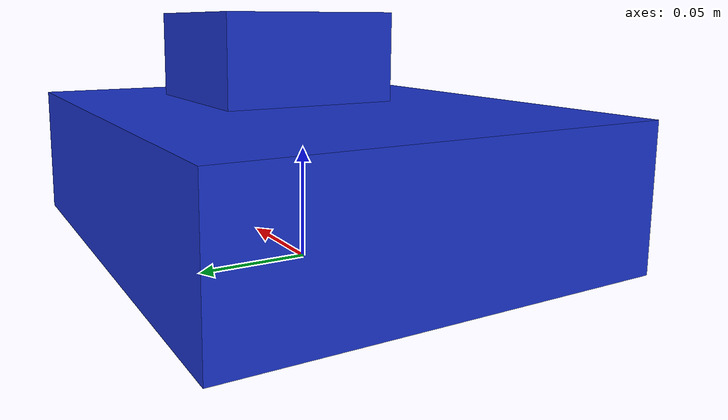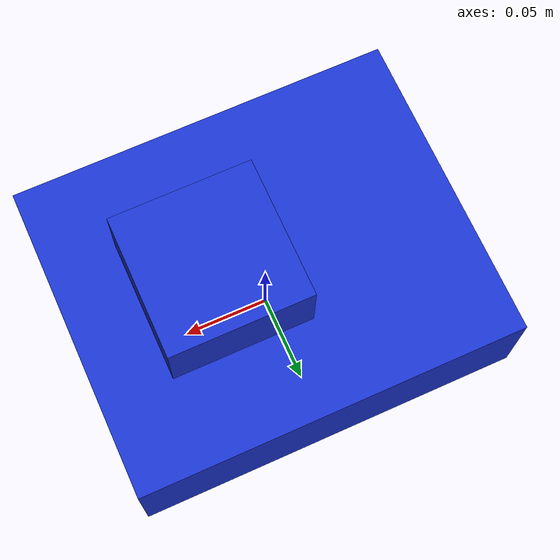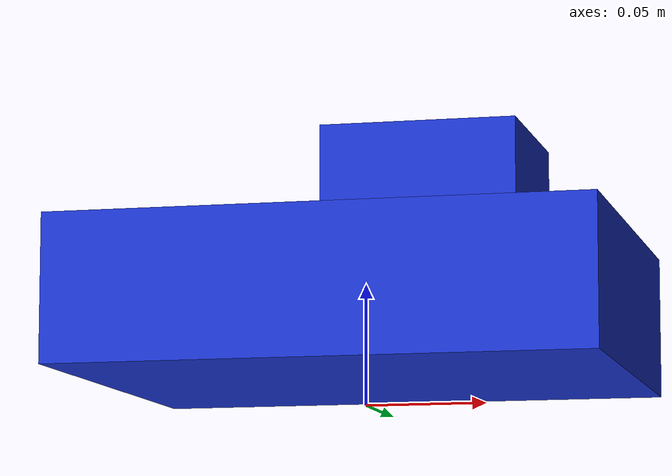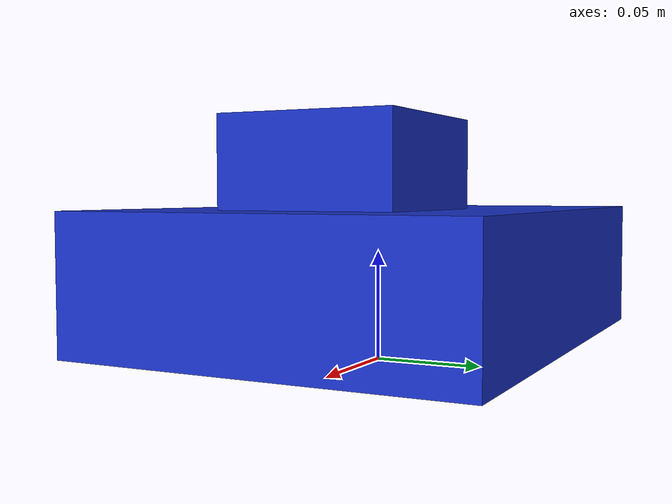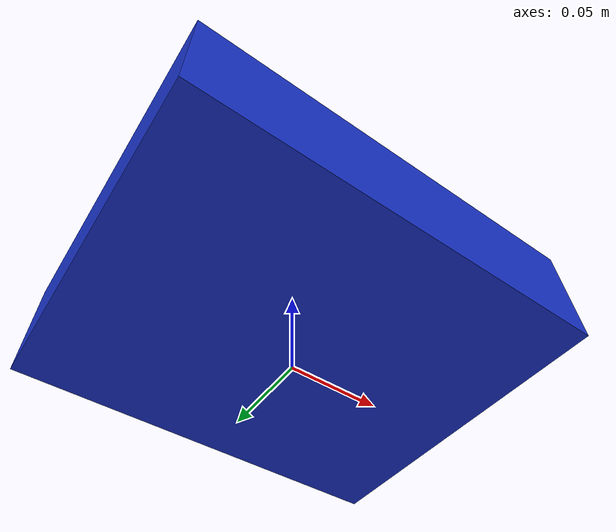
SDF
<?xml version="1.0"?>
<!-- 티셔츠 대용. 바구니 안에 놓일 파란 천 덩어리(밑판 + 위로 솟은 혹 = 주름).
     바구니와 같은 위치에 스폰하면 내부 pose로 알맞은 높이에 앉는다. -->
<sdf version="1.6">
  <model name="tshirt">
    <static>true</static>
    <link name="base">
      <pose>0 0 0.04 0 0 0</pose>
      <collision name="c"><geometry><box><size>0.22 0.18 0.06</size></box></geometry></collision>
      <visual name="v"><geometry><box><size>0.22 0.18 0.06</size></box></geometry>
        <material><ambient>0.1 0.2 0.8 1</ambient><diffuse>0.1 0.2 0.8 1</diffuse></material></visual>
    </link>
    <link name="bump">
      <pose>0.03 0.0 0.085 0 0 0</pose>
      <collision name="c"><geometry><box><size>0.08 0.08 0.05</size></box></geometry></collision>
      <visual name="v"><geometry><box><size>0.08 0.08 0.05</size></box></geometry>
        <material><ambient>0.1 0.2 0.8 1</ambient><diffuse>0.1 0.2 0.8 1</diffuse></material></visual>
    </link>
  </model>
</sdf>
